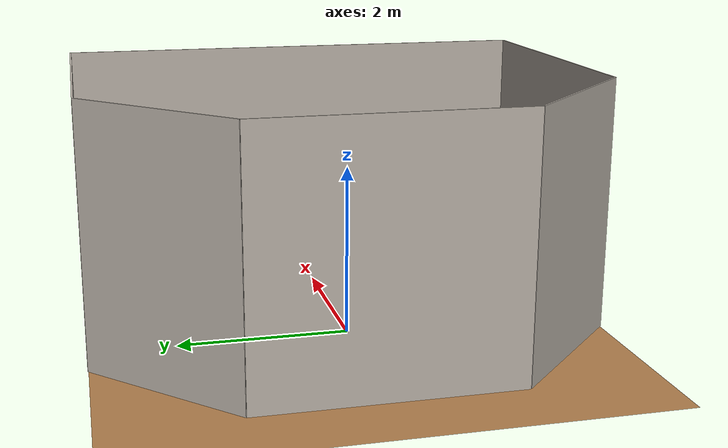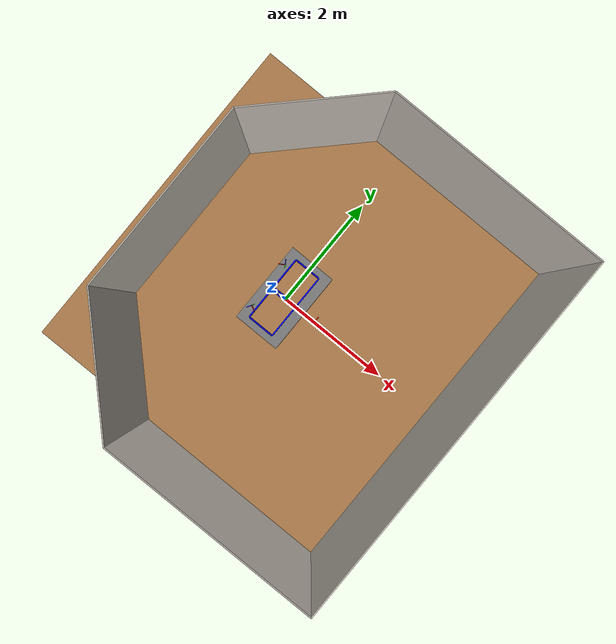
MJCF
<mujoco model="table_arena">
  <asset>
    <texture builtin="gradient" height="256" rgb1=".9 .9 1." rgb2=".2 .3 .4" type="skybox" width="256"/>
    <texture file="../textures/wood-tiles.png" type="2d" name="texplane"/>
    <material name="floorplane" reflectance="0.01" shininess="0.0" specular="0.0" texrepeat="2 2" texture="texplane" texuniform="true"/>
    <!-- ceramic table texture and material-->
    <texture file="../textures/ceramic.png" type="cube" name="tex-ceramic"/>
    <material name="table_ceramic" reflectance="0.0" shininess="0.0" specular="0.2" texrepeat="1 1" texture="tex-ceramic" />
    <!-- steel legs -->
    <texture file="../textures/steel-brushed.png" type="cube" name="tex-steel-brushed"/>
    <material name="table_legs_metal" reflectance="0.8" shininess="0.8" texrepeat="1 1" texture="tex-steel-brushed" />
    <!-- plaster walls -->
    <texture file="../textures/cream-plaster.png" type="2d" name="tex-cream-plaster"/>
    <material name="walls_mat" reflectance="0.0" shininess="0.1" specular="0.1" texrepeat="3 3" texture="tex-cream-plaster" texuniform="true" />
    <!-- added table texture and material for domain randomization -->
    <texture  name="textable" builtin="flat" height="512" width="512" rgb1="0.5 0.5 0.5" rgb2="0.5 0.5 0.5"/>
    <material name="table_mat" texture="textable" />
    <!-- bins -->
    <texture file="../textures/light-wood.png" type="2d" name="tex-light-wood"/>
    <texture file="../textures/dark-wood.png" type="2d" name="tex-dark-wood"/>
    <material name="light-wood" reflectance="0" texrepeat="15 15" texture="tex-light-wood" texuniform="true"/>
    <material name="dark-wood" reflectance="0" texrepeat="5 5" texture="tex-dark-wood" texuniform="true"/>
    <!-- target gripper -->
    <mesh name="hand" file="../grippers/panda_gripper/hand.stl" />
    <mesh name="hand_vis" file="../grippers/panda_gripper/hand_vis.stl" />
    <mesh name="finger" file="../grippers/panda_gripper/finger.stl" />
    <mesh name="finger_vis" file="../grippers/panda_gripper/finger_vis.stl" />
    <mesh name="finger_vis2" file="../grippers/panda_gripper/finger_longer.stl" />
    <texture type="cube" name="hand_tex" builtin="flat" width="100" height="100" rgb1="1 1 1" rgb2="1 1 1"/>
    <texture type="cube" name="finger_tex" builtin="flat" width="100" height="100" rgb1="0.5 0.5 0.5" rgb2="0.5 0.5 0.5"/>
    <material name="hand_mat" texture="hand_tex" rgba="1 1 1 0.5"/>
    <material name="finger_mat" texture="finger_tex" rgba="1 1 1 0.5"/>

  </asset>
  <worldbody>
    <!-- Floor -->
    <geom condim="3" material="floorplane" name="floor" pos="0 0 0" size="3 3 .125" type="plane"/>
    <!-- Walls (visual only) -->
    <geom pos="-1.25 2.25 1.5" quat="0.6532815 0.6532815 0.2705981 0.2705981" size="1.06 1.5 0.01" type="box" conaffinity="0" contype="0" group="1" name="wall_leftcorner_visual" material="walls_mat"/>
    <geom pos="-1.25 -2.25 1.5" quat="0.6532815 0.6532815 -0.2705981 -0.2705981" size="1.06 1.5 0.01" type="box" conaffinity="0" contype="0" group="1" name="wall_rightcorner_visual" material="walls_mat"/>
    <geom pos="1.25 3 1.5" quat="0.7071 0.7071 0 0" size="1.75 1.5 0.01" type="box" conaffinity="0" contype="0" group="1" name="wall_left_visual" material="walls_mat"/>
    <geom pos="1.25 -3 1.5" quat="0.7071 -0.7071 0 0" size="1.75 1.5 0.01" type="box" conaffinity="0" contype="0" group="1" name="wall_right_visual" material="walls_mat"/>
    <geom pos="-2 0 1.5" quat="0.5 0.5 0.5 0.5" size="1.5 1.5 0.01" type="box" conaffinity="0" contype="0" group="1" name="wall_rear_visual" material="walls_mat"/>
    <geom pos="3 0 1.5" quat="0.5 0.5 -0.5 -0.5" size="3 1.5 0.01" type="box" conaffinity="0" contype="0" group="1" name="wall_front_visual" material="walls_mat"/>
    <!-- Table body -->
    <body name="table" pos="0 0 0.4">
      <geom pos="0 0 0" size="0.4 0.7 0.4" type="box" name="table_collision" friction="1 0.005 0.0001"/>
      <geom pos="0 0 0" size="0.4 0.7 0.4" type="box" conaffinity="0" contype="0" group="1" name="table_visual" material="table_ceramic"/>
      <site pos="0 0 0.4" name="table_top" size="0.001 0.001 0.001" rgba="0 0 0 0"/>
      <!-- Legs (visual only) -->
      <geom pos="0 0 0" size="0.05 0.1" type="cylinder" conaffinity="0" contype="0" group="1" name="table_leg1_visual" material="table_legs_metal"/>
      <geom pos="0 0 0" size="0.05 0.1" type="cylinder" conaffinity="0" contype="0" group="1" name="table_leg2_visual" material="table_legs_metal"/>
      <geom pos="0 0 0" size="0.05 0.1" type="cylinder" conaffinity="0" contype="0" group="1" name="table_leg3_visual" material="table_legs_metal"/>
      <geom pos="0 0 0" size="0.05 0.1" type="cylinder" conaffinity="0" contype="0" group="1" name="table_leg4_visual" material="table_legs_metal"/>
    </body>
    <!-- Bin 0 -->
    <body name="bin_0" pos="0 -0.3 0.8">
      <site name="bin_0_center" pos="0 0 0" size="0.01 0.01 0.01" rgba="1 0 0 0.2" type="sphere" group="1"/>
      <geom pos="0 0 0.01" size="0.225 0.27 0.01" type="box" name="bin_0_bottom_visual" conaffinity="0" contype="0" group="1" material="light-wood"/>
      <geom pos="0 0.275 0.0675" size="0.225 0.01 0.0675" type="box" name="bin_0_right_collision" friction="0.3 0.005 0.0001" rgba="0 0 1 1" priority="1"/>
      <geom pos="0 0.275 0.0675" size="0.225 0.01 0.0675" type="box" name="bin_0_right_visual" conaffinity="0" contype="0" group="1" material="light-wood"/>
      <geom pos="0.23 0 0.0675" size="0.01 0.27 0.0675" type="box" name="bin_0_front_collision" friction="0.3 0.005 0.0001" rgba="0 0 1 1" priority="1"/>
      <geom pos="0.23 0 0.0675" size="0.01 0.27 0.0675" type="box" name="bin_0_front_visual" conaffinity="0" contype="0" group="1" material="light-wood"/>
      <geom pos="0 -0.275 0.0675" size="0.225 0.01 0.0675" type="box" name="bin_0_left_collision" friction="0.3 0.005 0.0001" rgba="0 0 1 1" priority="1"/>
      <geom pos="0 -0.275 0.0675" size="0.225 0.01 0.0675" type="box" name="bin_0_left_visual" conaffinity="0" contype="0" group="1" material="light-wood"/>
      <geom pos="-0.23 0 0.0675" size="0.01 0.27 0.0675" type="box" name="bin_0_back_collision" friction="0.3 0.005 0.0001" rgba="0 0 1 1" priority="1"/>
      <geom pos="-0.23 0 0.0675" size="0.01 0.27 0.0675" type="box" name="bin_0_back_visual" conaffinity="0" contype="0" group="1" material="light-wood"/>
    </body>

    <!-- Bin 1 -->
    <body name="bin_1" pos="0 0.3 0.8">
      <site name="bin_1_center" pos="0 0 0" size="0.01 0.01 0.01" rgba="1 0 0 0.2" type="sphere" group="1"/>
      <geom pos="0 0 0.01" size="0.225 0.27 0.01" type="box" name="bin_1_bottom_visual" conaffinity="0" contype="0" group="1" material="light-wood"/>
      <geom pos="0 0.275 0.0675" size="0.225 0.01 0.0675" type="box" name="bin_1_right_collision" friction="0.3 0.005 0.0001" rgba="0 0 1 1" priority="1"/>
      <geom pos="0 0.275 0.0675" size="0.225 0.01 0.0675" type="box" name="bin_1_right_visual" conaffinity="0" contype="0" group="1" material="light-wood"/>
      <geom pos="0.23 0 0.0675" size="0.01 0.27 0.0675" type="box" name="bin_1_front_collision" friction="0.3 0.005 0.0001" rgba="0 0 1 1" priority="1"/>
      <geom pos="0.23 0 0.0675" size="0.01 0.27 0.0675" type="box" name="bin_1_front_visual" conaffinity="0" contype="0" group="1" material="light-wood"/>
      <geom pos="0 -0.275 0.0675" size="0.225 0.01 0.0675" type="box" name="bin_1_left_collision" friction="0.3 0.005 0.0001" rgba="0 0 1 1" priority="1"/>
      <geom pos="0 -0.275 0.0675" size="0.225 0.01 0.0675" type="box" name="bin_1_left_visual" conaffinity="0" contype="0" group="1" material="light-wood"/>
      <geom pos="-0.23 0 0.0675" size="0.01 0.27 0.0675" type="box" name="bin_1_back_collision" friction="0.3 0.005 0.0001" rgba="0 0 1 1" priority="1"/>
      <geom pos="-0.23 0 0.0675" size="0.01 0.27 0.0675" type="box" name="bin_1_back_visual" conaffinity="0" contype="0" group="1" material="light-wood"/>
    </body>

    <!-- Collision planes -->
    <geom pos="0 0 0.81" size="0.5 0.5 0.01" type="plane" name="bin_bottom_plane" friction="0.3 0.005 0.0001" rgba="0 0 0 0" priority="1"/>

    <body name="target_eef" pos="0 0 0" quat="0 0 1 0">
      <site name="target_eef:grip_site" pos="0 0 0" size="0.01 0.01 0.01" rgba="1 0 0 0.5" type="sphere" group="1"/>
      <site name="target_eef:ee_x" pos="0.03 0 0" size="0.005 .03"  quat="0.707105  0 0.707108 0 " rgba="1 0 0 1" type="cylinder" group="1"/>
      <site name="target_eef:ee_y" pos="0 0.03 0" size="0.005 .03" quat="0.707105 0.707108 0 0" rgba="0 1 0 1" type="cylinder" group="1"/>
      <site name="target_eef:ee_z" pos="0 0 0.03" size="0.005 .03" quat="1 0 0 0" rgba="0 0 1 1" type="cylinder" group="1"/>
    </body>

    <light name="light1" diffuse=".8 .8 .8" dir="0 -.15 -1" directional="false" pos="1 1 4.0" specular="0.3 0.3 0.3" castshadow="false"/>
    <light name="light2" diffuse=".8 .8 .8" dir="0 -.15 -1" directional="false" pos="-3. -3. 4.0" specular="0.3 0.3 0.3" castshadow="false"/>
    <!-- front view -->
    <camera mode="fixed" name="frontview" pos="1.6 0 1.45" quat="0.56 0.43 0.43 0.56"/>
    <!-- bird view -->
    <camera mode="fixed" name="birdview" pos="-0.2 0 3.0" quat="0.7071 0 0 0.7071"/>
    <!-- agent view -->
    <camera mode="fixed" name="agentview" pos="1 0 0.715" quat="0.653 0.271 0.271 0.653"/>
    <!-- side view -->
    <!--Euler ZXY: x=60, z=-30-->
    <camera mode="fixed" name="leftview" pos="-0.15 -0.4 1.1" quat="0.8365163 0.4829629 -0.1294095 -0.2241439" fovy="60"/>
    <!-- side view -->
    <!--Euler ZXY: x=60, z=-150-->
    <camera mode="fixed" name="rightview" pos="-0.15 0.4 1.1" quat="0.2241439 0.1294095 -0.4829629 -0.8365163" fovy="60" />

    <!--Visualize Camera poses-->
    <body name="agentview_site" pos="0.6 0 1.5" quat="0.653 0.271 0.271 0.653">
        <site name="agentview_site:origin" pos="0 0 0" size="0.01 0.01 0.01" rgba="1 0 0 0.2" type="sphere" group="1"/>
        <site name="agentview_site:xaxis" pos="0.05 0 0" size="0.05 0.005 0.005" rgba="1 0 0 1" type="box" group="1"/>
        <site name="agentview_site:yaxis" pos="0 0.05 0" size="0.005 0.05 0.005" rgba="0 1 0 1" type="box" group="1"/>
        <site name="agentview_site:zaxis" pos="0 0 0.05" size="0.005 0.005 0.05" rgba="0 0 1 1" type="box" group="1"/>
    </body>
    <body name="leftview_site" pos="-0.3 -0.4 1.1" quat="0.8365163 0.4829629 -0.1294095 -0.2241439">
        <site name="leftview_site:origin" pos="0 0 0" size="0.01 0.01 0.01" rgba="1 0 0 0.2" type="sphere" group="1"/>
        <site name="leftview_site:xaxis" pos="0.05 0 0" size="0.05 0.005 0.005" rgba="1 0 0 1" type="box" group="1"/>
        <site name="leftview_site:yaxis" pos="0 0.05 0" size="0.005 0.05 0.005" rgba="0 1 0 1" type="box" group="1"/>
        <site name="leftview_site:zaxis" pos="0 0 0.05" size="0.005 0.005 0.05" rgba="0 0 1 1" type="box" group="1"/>
    </body>
    <body name="rightview_site" pos="-0.3 0.4 1.1" quat="0.2241439 0.1294095 -0.4829629 -0.8365163">
        <site name="rightview_site:origin" pos="0 0 0" size="0.01 0.01 0.01" rgba="1 1 0 0.2" type="sphere" group="1"/>
        <site name="rightview_site:xaxis" pos="0.05 0 0" size="0.05 0.005 0.005" rgba="1 0 0 1" type="box" group="1"/>
        <site name="rightview_site:yaxis" pos="0 0.05 0" size="0.005 0.05 0.005" rgba="0 1 0 1" type="box" group="1"/>
        <site name="rightview_site:zaxis" pos="0 0 0.05" size="0.005 0.005 0.05" rgba="0 0 1 1" type="box" group="1"/>
    </body>
    </worldbody>
</mujoco>
